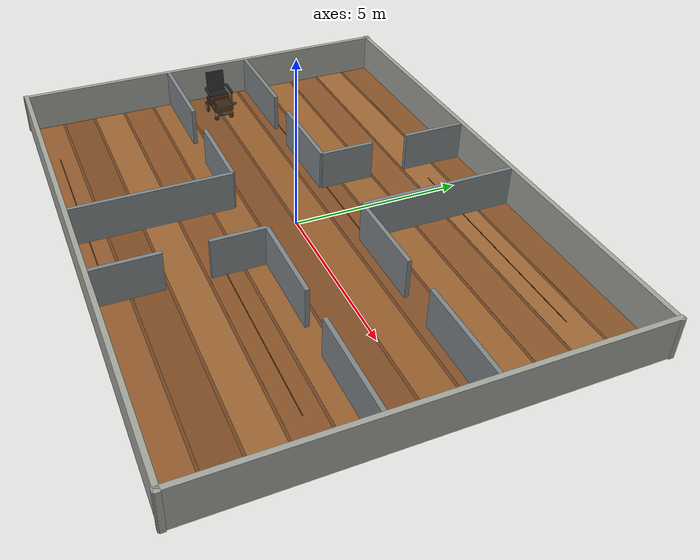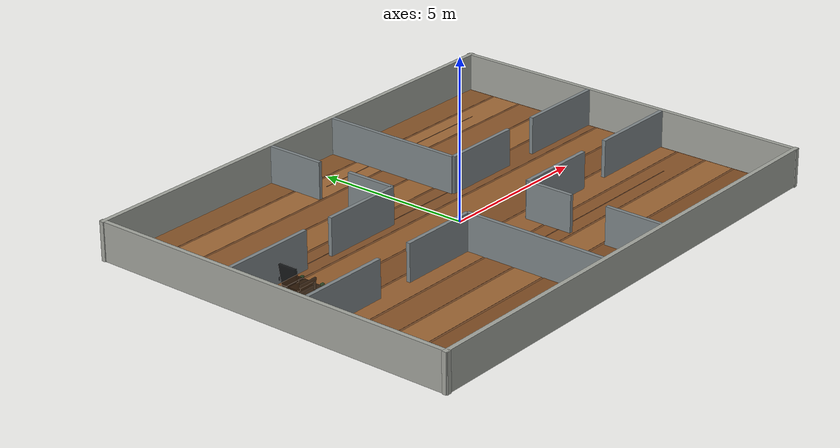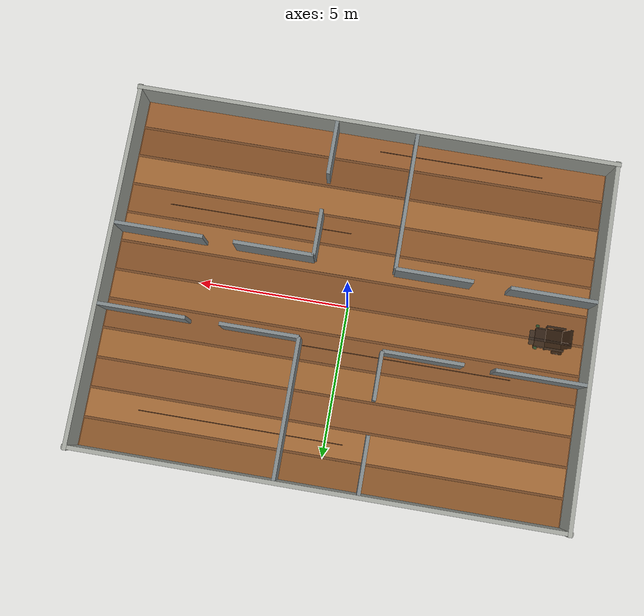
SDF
<?xml version="1.0"?>
<sdf version="1.10">
  <world name="m6_room">
    <physics name="1ms" type="ignored">
      <max_step_size>0.001</max_step_size>
      <real_time_factor>1.0</real_time_factor>
    </physics>

    <plugin filename="gz-sim-physics-system" name="gz::sim::systems::Physics"/>
    <plugin filename="gz-sim-user-commands-system" name="gz::sim::systems::UserCommands"/>
    <plugin filename="gz-sim-scene-broadcaster-system" name="gz::sim::systems::SceneBroadcaster"/>
    <plugin filename="gz-sim-sensors-system" name="gz::sim::systems::Sensors">
      <render_engine>ogre2</render_engine>
    </plugin>

    <light name="sun" type="directional">
      <pose>0 0 8 0 0 0</pose>
      <diffuse>0.90 0.86 0.78 1</diffuse>
      <specular>0.20 0.18 0.15 1</specular>
      <direction>-0.45 0.20 -0.88</direction>
    </light>

    <model name="floor">
      <static>true</static>
      <link name="link">
        <collision name="collision">
          <geometry><box><size>16 12 0.05</size></box></geometry>
        </collision>
        <visual name="visual">
          <geometry><box><size>16 12 0.05</size></box></geometry>
          <material>
            <ambient>0.45 0.28 0.15 1</ambient>
            <diffuse>0.45 0.28 0.15 1</diffuse>
            <specular>0.10 0.08 0.05 1</specular>
          </material>
        </visual>
      </link>
    </model>

    <model name="wood_floor_plank_0"><static>true</static><pose>0 -5.5 0.031 0 0 0</pose><link name="link"><visual name="visual"><geometry><box><size>15.8 0.92 0.004</size></box></geometry><material><ambient>0.58 0.36 0.18 1</ambient><diffuse>0.58 0.36 0.18 1</diffuse></material></visual></link></model>
    <model name="wood_floor_plank_1"><static>true</static><pose>0 -4.5 0.031 0 0 0</pose><link name="link"><visual name="visual"><geometry><box><size>15.8 0.92 0.004</size></box></geometry><material><ambient>0.50 0.30 0.14 1</ambient><diffuse>0.50 0.30 0.14 1</diffuse></material></visual></link></model>
    <model name="wood_floor_plank_2"><static>true</static><pose>0 -3.5 0.031 0 0 0</pose><link name="link"><visual name="visual"><geometry><box><size>15.8 0.92 0.004</size></box></geometry><material><ambient>0.62 0.40 0.20 1</ambient><diffuse>0.62 0.40 0.20 1</diffuse></material></visual></link></model>
    <model name="wood_floor_plank_3"><static>true</static><pose>0 -2.5 0.031 0 0 0</pose><link name="link"><visual name="visual"><geometry><box><size>15.8 0.92 0.004</size></box></geometry><material><ambient>0.54 0.33 0.16 1</ambient><diffuse>0.54 0.33 0.16 1</diffuse></material></visual></link></model>
    <model name="wood_floor_plank_4"><static>true</static><pose>0 -1.5 0.031 0 0 0</pose><link name="link"><visual name="visual"><geometry><box><size>15.8 0.92 0.004</size></box></geometry><material><ambient>0.60 0.38 0.19 1</ambient><diffuse>0.60 0.38 0.19 1</diffuse></material></visual></link></model>
    <model name="wood_floor_plank_5"><static>true</static><pose>0 -0.5 0.031 0 0 0</pose><link name="link"><visual name="visual"><geometry><box><size>15.8 0.92 0.004</size></box></geometry><material><ambient>0.51 0.31 0.15 1</ambient><diffuse>0.51 0.31 0.15 1</diffuse></material></visual></link></model>
    <model name="wood_floor_plank_6"><static>true</static><pose>0 0.5 0.031 0 0 0</pose><link name="link"><visual name="visual"><geometry><box><size>15.8 0.92 0.004</size></box></geometry><material><ambient>0.59 0.37 0.18 1</ambient><diffuse>0.59 0.37 0.18 1</diffuse></material></visual></link></model>
    <model name="wood_floor_plank_7"><static>true</static><pose>0 1.5 0.031 0 0 0</pose><link name="link"><visual name="visual"><geometry><box><size>15.8 0.92 0.004</size></box></geometry><material><ambient>0.52 0.32 0.16 1</ambient><diffuse>0.52 0.32 0.16 1</diffuse></material></visual></link></model>
    <model name="wood_floor_plank_8"><static>true</static><pose>0 2.5 0.031 0 0 0</pose><link name="link"><visual name="visual"><geometry><box><size>15.8 0.92 0.004</size></box></geometry><material><ambient>0.61 0.39 0.19 1</ambient><diffuse>0.61 0.39 0.19 1</diffuse></material></visual></link></model>
    <model name="wood_floor_plank_9"><static>true</static><pose>0 3.5 0.031 0 0 0</pose><link name="link"><visual name="visual"><geometry><box><size>15.8 0.92 0.004</size></box></geometry><material><ambient>0.55 0.34 0.17 1</ambient><diffuse>0.55 0.34 0.17 1</diffuse></material></visual></link></model>
    <model name="wood_floor_plank_10"><static>true</static><pose>0 4.5 0.031 0 0 0</pose><link name="link"><visual name="visual"><geometry><box><size>15.8 0.92 0.004</size></box></geometry><material><ambient>0.63 0.41 0.21 1</ambient><diffuse>0.63 0.41 0.21 1</diffuse></material></visual></link></model>
    <model name="wood_floor_plank_11"><static>true</static><pose>0 5.5 0.031 0 0 0</pose><link name="link"><visual name="visual"><geometry><box><size>15.8 0.92 0.004</size></box></geometry><material><ambient>0.53 0.33 0.16 1</ambient><diffuse>0.53 0.33 0.16 1</diffuse></material></visual></link></model>
    <model name="wood_floor_grain_0"><static>true</static><pose>-3.0 -5.5 0.034 0 0 0</pose><link name="link"><visual name="visual"><geometry><box><size>5.6 0.025 0.005</size></box></geometry><material><ambient>0.28 0.16 0.08 1</ambient><diffuse>0.28 0.16 0.08 1</diffuse></material></visual></link></model>
    <model name="wood_floor_grain_1"><static>true</static><pose>3.4 -2.5 0.034 0 0 0</pose><link name="link"><visual name="visual"><geometry><box><size>6.2 0.025 0.005</size></box></geometry><material><ambient>0.30 0.17 0.08 1</ambient><diffuse>0.30 0.17 0.08 1</diffuse></material></visual></link></model>
    <model name="wood_floor_grain_2"><static>true</static><pose>-2.2 1.5 0.034 0 0 0</pose><link name="link"><visual name="visual"><geometry><box><size>7.0 0.025 0.005</size></box></geometry><material><ambient>0.29 0.17 0.08 1</ambient><diffuse>0.29 0.17 0.08 1</diffuse></material></visual></link></model>
    <model name="wood_floor_grain_3"><static>true</static><pose>2.8 4.5 0.034 0 0 0</pose><link name="link"><visual name="visual"><geometry><box><size>6.8 0.025 0.005</size></box></geometry><material><ambient>0.27 0.15 0.07 1</ambient><diffuse>0.27 0.15 0.07 1</diffuse></material></visual></link></model>

    <model name="outer_north_wall"><static>true</static><pose>0 6 0.60 0 0 0</pose><link name="link"><collision name="collision"><geometry><box><size>16.2 0.14 1.2</size></box></geometry></collision><visual name="visual"><geometry><box><size>16.2 0.14 1.2</size></box></geometry><material><ambient>0.64 0.65 0.62 1</ambient><diffuse>0.64 0.65 0.62 1</diffuse></material></visual></link></model>
    <model name="outer_south_wall"><static>true</static><pose>0 -6 0.60 0 0 0</pose><link name="link"><collision name="collision"><geometry><box><size>16.2 0.14 1.2</size></box></geometry></collision><visual name="visual"><geometry><box><size>16.2 0.14 1.2</size></box></geometry><material><ambient>0.64 0.65 0.62 1</ambient><diffuse>0.64 0.65 0.62 1</diffuse></material></visual></link></model>
    <model name="outer_west_wall"><static>true</static><pose>-8 0 0.60 0 0 0</pose><link name="link"><collision name="collision"><geometry><box><size>0.14 12.2 1.2</size></box></geometry></collision><visual name="visual"><geometry><box><size>0.14 12.2 1.2</size></box></geometry><material><ambient>0.64 0.65 0.62 1</ambient><diffuse>0.64 0.65 0.62 1</diffuse></material></visual></link></model>
    <model name="outer_east_wall"><static>true</static><pose>8 0 0.60 0 0 0</pose><link name="link"><collision name="collision"><geometry><box><size>0.14 12.2 1.2</size></box></geometry></collision><visual name="visual"><geometry><box><size>0.14 12.2 1.2</size></box></geometry><material><ambient>0.64 0.65 0.62 1</ambient><diffuse>0.64 0.65 0.62 1</diffuse></material></visual></link></model>

    <!-- Cross corridor: inner wall faces at x/y = +/-1.29 m.
         Six door openings: 1.0, 1.1 and 1.2 m, two of each.
         NW and SE have two entrances; all four rooms have turning space. -->
    <model name="door_nw_horizontal_a">
      <static>true</static><pose>-6.465 1.35 0.60 0 0 0</pose>
      <link name="link">
        <collision name="collision"><geometry><box><size>2.93 0.12 1.2</size></box></geometry></collision>
        <visual name="visual">
          <geometry><box><size>2.93 0.12 1.2</size></box></geometry>
          <material><ambient>0.50 0.53 0.54 1</ambient><diffuse>0.50 0.53 0.54 1</diffuse></material>
        </visual>
      </link>
    </model>

    <model name="door_nw_horizontal_b">
      <static>true</static><pose>-2.675 1.35 0.60 0 0 0</pose>
      <link name="link">
        <collision name="collision"><geometry><box><size>2.65 0.12 1.2</size></box></geometry></collision>
        <visual name="visual">
          <geometry><box><size>2.65 0.12 1.2</size></box></geometry>
          <material><ambient>0.50 0.53 0.54 1</ambient><diffuse>0.50 0.53 0.54 1</diffuse></material>
        </visual>
      </link>
    </model>

    <model name="door_ne_horizontal_a">
      <static>true</static><pose>2.65 1.35 0.60 0 0 0</pose>
      <link name="link">
        <collision name="collision"><geometry><box><size>2.6 0.12 1.2</size></box></geometry></collision>
        <visual name="visual">
          <geometry><box><size>2.6 0.12 1.2</size></box></geometry>
          <material><ambient>0.50 0.53 0.54 1</ambient><diffuse>0.50 0.53 0.54 1</diffuse></material>
        </visual>
      </link>
    </model>

    <model name="door_ne_horizontal_b">
      <static>true</static><pose>6.49 1.35 0.60 0 0 0</pose>
      <link name="link">
        <collision name="collision"><geometry><box><size>2.88 0.12 1.2</size></box></geometry></collision>
        <visual name="visual">
          <geometry><box><size>2.88 0.12 1.2</size></box></geometry>
          <material><ambient>0.50 0.53 0.54 1</ambient><diffuse>0.50 0.53 0.54 1</diffuse></material>
        </visual>
      </link>
    </model>

    <model name="door_sw_horizontal_a">
      <static>true</static><pose>-6.515 -1.35 0.60 0 0 0</pose>
      <link name="link">
        <collision name="collision"><geometry><box><size>2.83 0.12 1.2</size></box></geometry></collision>
        <visual name="visual">
          <geometry><box><size>2.83 0.12 1.2</size></box></geometry>
          <material><ambient>0.50 0.53 0.54 1</ambient><diffuse>0.50 0.53 0.54 1</diffuse></material>
        </visual>
      </link>
    </model>

    <model name="door_sw_horizontal_b">
      <static>true</static><pose>-2.625 -1.35 0.60 0 0 0</pose>
      <link name="link">
        <collision name="collision"><geometry><box><size>2.55 0.12 1.2</size></box></geometry></collision>
        <visual name="visual">
          <geometry><box><size>2.55 0.12 1.2</size></box></geometry>
          <material><ambient>0.50 0.53 0.54 1</ambient><diffuse>0.50 0.53 0.54 1</diffuse></material>
        </visual>
      </link>
    </model>

    <model name="door_se_horizontal_a">
      <static>true</static><pose>2.675 -1.35 0.60 0 0 0</pose>
      <link name="link">
        <collision name="collision"><geometry><box><size>2.65 0.12 1.2</size></box></geometry></collision>
        <visual name="visual">
          <geometry><box><size>2.65 0.12 1.2</size></box></geometry>
          <material><ambient>0.50 0.53 0.54 1</ambient><diffuse>0.50 0.53 0.54 1</diffuse></material>
        </visual>
      </link>
    </model>

    <model name="door_se_horizontal_b">
      <static>true</static><pose>6.465 -1.35 0.60 0 0 0</pose>
      <link name="link">
        <collision name="collision"><geometry><box><size>2.93 0.12 1.2</size></box></geometry></collision>
        <visual name="visual">
          <geometry><box><size>2.93 0.12 1.2</size></box></geometry>
          <material><ambient>0.50 0.53 0.54 1</ambient><diffuse>0.50 0.53 0.54 1</diffuse></material>
        </visual>
      </link>
    </model>

    <model name="door_nw_vertical_a">
      <static>true</static><pose>-1.35 2.15 0.60 0 0 0</pose>
      <link name="link">
        <collision name="collision"><geometry><box><size>0.12 1.6 1.2</size></box></geometry></collision>
        <visual name="visual">
          <geometry><box><size>0.12 1.6 1.2</size></box></geometry>
          <material><ambient>0.50 0.53 0.54 1</ambient><diffuse>0.50 0.53 0.54 1</diffuse></material>
        </visual>
      </link>
    </model>

    <model name="door_nw_vertical_b">
      <static>true</static><pose>-1.35 4.99 0.60 0 0 0</pose>
      <link name="link">
        <collision name="collision"><geometry><box><size>0.12 1.88 1.2</size></box></geometry></collision>
        <visual name="visual">
          <geometry><box><size>0.12 1.88 1.2</size></box></geometry>
          <material><ambient>0.50 0.53 0.54 1</ambient><diffuse>0.50 0.53 0.54 1</diffuse></material>
        </visual>
      </link>
    </model>

    <model name="door_se_vertical_a">
      <static>true</static><pose>1.35 -5.015 0.60 0 0 0</pose>
      <link name="link">
        <collision name="collision"><geometry><box><size>0.12 1.83 1.2</size></box></geometry></collision>
        <visual name="visual">
          <geometry><box><size>0.12 1.83 1.2</size></box></geometry>
          <material><ambient>0.50 0.53 0.54 1</ambient><diffuse>0.50 0.53 0.54 1</diffuse></material>
        </visual>
      </link>
    </model>

    <model name="door_se_vertical_b">
      <static>true</static><pose>1.35 -2.125 0.60 0 0 0</pose>
      <link name="link">
        <collision name="collision"><geometry><box><size>0.12 1.55 1.2</size></box></geometry></collision>
        <visual name="visual">
          <geometry><box><size>0.12 1.55 1.2</size></box></geometry>
          <material><ambient>0.50 0.53 0.54 1</ambient><diffuse>0.50 0.53 0.54 1</diffuse></material>
        </visual>
      </link>
    </model>

    <model name="vertical_corridor_west_south">
      <static>true</static><pose>-1.35 -3.64 0.60 0 0 0</pose>
      <link name="link">
        <collision name="collision"><geometry><box><size>0.12 4.58 1.2</size></box></geometry></collision>
        <visual name="visual">
          <geometry><box><size>0.12 4.58 1.2</size></box></geometry>
          <material><ambient>0.50 0.53 0.54 1</ambient><diffuse>0.50 0.53 0.54 1</diffuse></material>
        </visual>
      </link>
    </model>

    <model name="vertical_corridor_east_north">
      <static>true</static><pose>1.35 3.64 0.60 0 0 0</pose>
      <link name="link">
        <collision name="collision"><geometry><box><size>0.12 4.58 1.2</size></box></geometry></collision>
        <visual name="visual">
          <geometry><box><size>0.12 4.58 1.2</size></box></geometry>
          <material><ambient>0.50 0.53 0.54 1</ambient><diffuse>0.50 0.53 0.54 1</diffuse></material>
        </visual>
      </link>
    </model>

    <include>
      <uri>model://smart_wheelchair</uri>
      <pose>-6.7 0 0 0 0 0</pose>
    </include>
  </world>
</sdf>

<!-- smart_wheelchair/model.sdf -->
<sdf version="1.6">
  <model name="smart_wheelchair">
    <pose>0 0 0 0 0 0</pose>

    <link name="base_link">
      <inertial>
        <mass>65.0</mass>
        <inertia>
          <ixx>3.0</ixx><ixy>0</ixy><ixz>0</ixz>
          <iyy>4.0</iyy><iyz>0</iyz>
          <izz>3.0</izz>
        </inertia>
      </inertial>

      <collision name="base_collision">
        <pose>0 0 0.42 0 0 0</pose>
        <geometry><box><size>0.95 0.62 0.18</size></box></geometry>
      </collision>
      <visual name="base_visual">
        <transparency>0.35</transparency>
        <pose>0 0 0.42 0 0 0</pose>
        <geometry><box><size>0.95 0.62 0.18</size></box></geometry>
        <material><ambient>0.06 0.07 0.08 1</ambient><diffuse>0.06 0.07 0.08 1</diffuse></material>
      </visual>

      <visual name="seat_visual">
        <transparency>0.35</transparency>
        <pose>-0.12 0 0.68 0 0 0</pose>
        <geometry><box><size>0.60 0.58 0.09</size></box></geometry>
        <material><ambient>0.015 0.017 0.02 1</ambient><diffuse>0.015 0.017 0.02 1</diffuse></material>
      </visual>

      <visual name="backrest_visual">
        <transparency>0.35</transparency>
        <pose>-0.43 0 1.00 0 -0.18 0</pose>
        <geometry><box><size>0.09 0.58 0.70</size></box></geometry>
        <material><ambient>0.015 0.017 0.02 1</ambient><diffuse>0.015 0.017 0.02 1</diffuse></material>
      </visual>

      <visual name="left_armrest_visual">
        <transparency>0.35</transparency>
        <pose>-0.10 0.36 0.83 0 0 0</pose>
        <geometry><box><size>0.62 0.06 0.08</size></box></geometry>
        <material><ambient>0.08 0.09 0.10 1</ambient><diffuse>0.08 0.09 0.10 1</diffuse></material>
      </visual>

      <visual name="right_armrest_visual">
        <transparency>0.35</transparency>
        <pose>-0.10 -0.36 0.83 0 0 0</pose>
        <geometry><box><size>0.62 0.06 0.08</size></box></geometry>
        <material><ambient>0.08 0.09 0.10 1</ambient><diffuse>0.08 0.09 0.10 1</diffuse></material>
      </visual>

      <visual name="left_arm_support_front_visual">
        <transparency>0.35</transparency>
        <pose>0.16 0.36 0.67 0 0 0</pose>
        <geometry><box><size>0.045 0.045 0.28</size></box></geometry>
        <material><ambient>0.16 0.18 0.19 1</ambient><diffuse>0.16 0.18 0.19 1</diffuse></material>
      </visual>

      <visual name="right_arm_support_front_visual">
        <transparency>0.35</transparency>
        <pose>0.16 -0.36 0.67 0 0 0</pose>
        <geometry><box><size>0.045 0.045 0.28</size></box></geometry>
        <material><ambient>0.16 0.18 0.19 1</ambient><diffuse>0.16 0.18 0.19 1</diffuse></material>
      </visual>

      <visual name="footplate_visual">
        <transparency>0.35</transparency>
        <pose>0.48 0 0.30 0 0 0</pose>
        <geometry><box><size>0.32 0.48 0.045</size></box></geometry>
        <material><ambient>0.12 0.13 0.14 1</ambient><diffuse>0.12 0.13 0.14 1</diffuse></material>
      </visual>

      <visual name="left_frame_rail_visual">
        <transparency>0.35</transparency>
        <pose>0.02 0.31 0.52 0 0 0</pose>
        <geometry><box><size>0.86 0.035 0.06</size></box></geometry>
        <material><ambient>0.13 0.15 0.16 1</ambient><diffuse>0.13 0.15 0.16 1</diffuse></material>
      </visual>

      <visual name="right_frame_rail_visual">
        <transparency>0.35</transparency>
        <pose>0.02 -0.31 0.52 0 0 0</pose>
        <geometry><box><size>0.86 0.035 0.06</size></box></geometry>
        <material><ambient>0.13 0.15 0.16 1</ambient><diffuse>0.13 0.15 0.16 1</diffuse></material>
      </visual>

      <visual name="battery_visual">
        <transparency>0.35</transparency>
        <pose>-0.15 0 0.27 0 0 0</pose>
        <geometry><box><size>0.42 0.44 0.12</size></box></geometry>
        <material><ambient>0.08 0.09 0.10 1</ambient><diffuse>0.08 0.09 0.10 1</diffuse></material>
      </visual>

      <visual name="left_lidar_body_visual">
        <transparency>0.35</transparency>
        <plugin name="faint_left_lidar" filename="libSmartWheelChairFaintLidarVisual.so">
          <sensor>left_lidar</sensor>
        </plugin>
        <pose>0.46 0.36 0.56 0 0 0</pose>
        <geometry><box><size>0.10 0.08 0.055</size></box></geometry>
        <material><ambient>0.02 0.30 0.18 1</ambient><diffuse>0.02 0.30 0.18 1</diffuse></material>
      </visual>

      <visual name="right_lidar_body_visual">
        <transparency>0.35</transparency>
        <plugin name="faint_right_lidar" filename="libSmartWheelChairFaintLidarVisual.so">
          <sensor>right_lidar</sensor>
        </plugin>
        <pose>0.46 -0.36 0.56 0 0 0</pose>
        <geometry><box><size>0.10 0.08 0.055</size></box></geometry>
        <material><ambient>0.02 0.30 0.18 1</ambient><diffuse>0.02 0.30 0.18 1</diffuse></material>
      </visual>

      <sensor name="left_lidar" type="ray">
        <pose>0.46 0.36 0.56 0 0 0</pose>
        <update_rate>10</update_rate>
        <ray>
          <scan>
            <horizontal>
              <samples>721</samples>
              <resolution>1</resolution>
              <min_angle>-3.141592653589793</min_angle>
              <max_angle>3.141592653589793</max_angle>
            </horizontal>
          </scan>
          <range>
            <min>0.08</min>
            <max>5.0</max>
            <resolution>0.01</resolution>
          </range>
        </ray>
        <plugin name="left_lidar_ros" filename="libgazebo_ros_laser.so">
          <robotNamespace>/</robotNamespace>
          <topicName>/scan_left</topicName>
          <frameName>left_lidar</frameName>
        </plugin>
        <always_on>true</always_on>
        <visualize>true</visualize>
      </sensor>

      <sensor name="right_lidar" type="ray">
        <pose>0.46 -0.36 0.56 0 0 0</pose>
        <update_rate>10</update_rate>
        <ray>
          <scan>
            <horizontal>
              <samples>721</samples>
              <resolution>1</resolution>
              <min_angle>-3.141592653589793</min_angle>
              <max_angle>3.141592653589793</max_angle>
            </horizontal>
          </scan>
          <range>
            <min>0.08</min>
            <max>5.0</max>
            <resolution>0.01</resolution>
          </range>
        </ray>
        <plugin name="right_lidar_ros" filename="libgazebo_ros_laser.so">
          <robotNamespace>/</robotNamespace>
          <topicName>/scan_right</topicName>
          <frameName>right_lidar</frameName>
        </plugin>
        <always_on>true</always_on>
        <visualize>true</visualize>
      </sensor>

      <sensor name="rear_camera" type="camera">
        <pose>-0.58 0 0.72 0 0.60 3.1416</pose>
        <update_rate>15</update_rate>
        <camera>
          <horizontal_fov>2.094</horizontal_fov>
          <image>
            <width>640</width>
            <height>360</height>
            <format>R8G8B8</format>
          </image>
          <clip>
            <near>0.05</near>
            <far>10.0</far>
          </clip>
        </camera>
        <plugin name="rear_camera_ros" filename="libgazebo_ros_camera.so">
          <robotNamespace>/</robotNamespace>
          <cameraName>camera/rear</cameraName>
          <imageTopicName>image</imageTopicName>
          <cameraInfoTopicName>camera_info</cameraInfoTopicName>
          <frameName>rear_camera</frameName>
        </plugin>
        <always_on>true</always_on>
      </sensor>
    </link>

    <link name="left_rear_wheel">
      <pose>-0.33 0.36 0.18 0 0 0</pose>
      <inertial><mass>2.0</mass><inertia><ixx>0.02</ixx><iyy>0.02</iyy><izz>0.02</izz></inertia></inertial>
      <collision name="collision"><pose>0 0 0 1.5708 0 0</pose><geometry><cylinder><radius>0.18</radius><length>0.07</length></cylinder></geometry></collision>
      <visual name="visual">
        <transparency>0.35</transparency><pose>0 0 0 1.5708 0 0</pose><geometry><cylinder><radius>0.18</radius><length>0.07</length></cylinder></geometry><material><ambient>0.03 0.03 0.03 1</ambient><diffuse>0.03 0.03 0.03 1</diffuse></material></visual>
      <visual name="left_rear_hub_visual">
        <transparency>0.35</transparency><pose>0 0 0 1.5708 0 0</pose><geometry><cylinder><radius>0.09</radius><length>0.08</length></cylinder></geometry><material><ambient>0.55 0.58 0.60 1</ambient><diffuse>0.55 0.58 0.60 1</diffuse></material></visual>
    </link>

    <link name="right_rear_wheel">
      <pose>-0.33 -0.36 0.18 0 0 0</pose>
      <inertial><mass>2.0</mass><inertia><ixx>0.02</ixx><iyy>0.02</iyy><izz>0.02</izz></inertia></inertial>
      <collision name="collision"><pose>0 0 0 1.5708 0 0</pose><geometry><cylinder><radius>0.18</radius><length>0.07</length></cylinder></geometry></collision>
      <visual name="visual">
        <transparency>0.35</transparency><pose>0 0 0 1.5708 0 0</pose><geometry><cylinder><radius>0.18</radius><length>0.07</length></cylinder></geometry><material><ambient>0.03 0.03 0.03 1</ambient><diffuse>0.03 0.03 0.03 1</diffuse></material></visual>
      <visual name="right_rear_hub_visual">
        <transparency>0.35</transparency><pose>0 0 0 1.5708 0 0</pose><geometry><cylinder><radius>0.09</radius><length>0.08</length></cylinder></geometry><material><ambient>0.55 0.58 0.60 1</ambient><diffuse>0.55 0.58 0.60 1</diffuse></material></visual>
    </link>

    <link name="left_front_caster">
      <pose>0.38 0.25 0.08 0 0 0</pose>
      <inertial><mass>0.6</mass><inertia><ixx>0.002</ixx><iyy>0.002</iyy><izz>0.002</izz></inertia></inertial>
      <collision name="collision"><geometry><sphere><radius>0.08</radius></sphere></geometry></collision>
      <visual name="visual">
        <transparency>0.35</transparency><geometry><sphere><radius>0.08</radius></sphere></geometry><material><ambient>0.05 0.05 0.055 1</ambient><diffuse>0.05 0.05 0.055 1</diffuse></material></visual>
      <visual name="left_caster_fork_visual">
        <transparency>0.35</transparency><pose>0 0 0.11 0 0 0</pose><geometry><box><size>0.05 0.12 0.12</size></box></geometry><material><ambient>0.55 0.58 0.60 1</ambient><diffuse>0.55 0.58 0.60 1</diffuse></material></visual>
    </link>

    <link name="right_front_caster">
      <pose>0.38 -0.25 0.08 0 0 0</pose>
      <inertial><mass>0.6</mass><inertia><ixx>0.002</ixx><iyy>0.002</iyy><izz>0.002</izz></inertia></inertial>
      <collision name="collision"><geometry><sphere><radius>0.08</radius></sphere></geometry></collision>
      <visual name="visual">
        <transparency>0.35</transparency><geometry><sphere><radius>0.08</radius></sphere></geometry><material><ambient>0.05 0.05 0.055 1</ambient><diffuse>0.05 0.05 0.055 1</diffuse></material></visual>
      <visual name="right_caster_fork_visual">
        <transparency>0.35</transparency><pose>0 0 0.11 0 0 0</pose><geometry><box><size>0.05 0.12 0.12</size></box></geometry><material><ambient>0.55 0.58 0.60 1</ambient><diffuse>0.55 0.58 0.60 1</diffuse></material></visual>
    </link>

    <link name="rear_axle">
      <pose>-0.33 0 0 0 0 0</pose>
      <inertial>
        <mass>0.001</mass>
        <inertia><ixx>0.000001</ixx><iyy>0.000001</iyy><izz>0.000001</izz></inertia>
      </inertial>
    </link>
    <joint name="rear_axle_joint" type="fixed">
      <parent>base_link</parent>
      <child>rear_axle</child>
    </joint>

    <joint name="left_rear_wheel_joint" type="revolute">
      <parent>base_link</parent>
      <child>left_rear_wheel</child>
      <axis>
        <xyz>0 1 0</xyz>
        <limit><lower>-1e16</lower><upper>1e16</upper></limit>
      </axis>
    </joint>

    <joint name="right_rear_wheel_joint" type="revolute">
      <parent>base_link</parent>
      <child>right_rear_wheel</child>
      <axis>
        <xyz>0 1 0</xyz>
        <limit><lower>-1e16</lower><upper>1e16</upper></limit>
      </axis>
    </joint>

    <joint name="left_front_caster_joint" type="ball">
      <parent>base_link</parent>
      <child>left_front_caster</child>
    </joint>

    <joint name="right_front_caster_joint" type="ball">
      <parent>base_link</parent>
      <child>right_front_caster</child>
    </joint>

    <plugin name="differential_drive_controller" filename="libgazebo_ros_diff_drive.so">
      <robotNamespace>/</robotNamespace>
      <rosDebugLevel>na</rosDebugLevel>
      <publishWheelJointState>false</publishWheelJointState>
      <wheelAcceleration>0</wheelAcceleration>
      <wheelTorque>5</wheelTorque>
      <publishTf>true</publishTf>
      <alwaysOn>true</alwaysOn>
      <updateRate>50</updateRate>
      <leftJoint>left_rear_wheel_joint</leftJoint>
      <rightJoint>right_rear_wheel_joint</rightJoint>
      <wheelSeparation>0.72</wheelSeparation>
      <wheelDiameter>0.36</wheelDiameter>
      <commandTopic>/cmd_vel</commandTopic>
      <odometryTopic>/diff_drive/odom</odometryTopic>
      <odometryFrame>odom</odometryFrame>
      <robotBaseFrame>rear_axle</robotBaseFrame>
      <publishWheelTF>false</publishWheelTF>
      <publishOdomTF>false</publishOdomTF>
      <odometrySource>world</odometrySource>
    </plugin>

    <!-- P3D measures the link itself; diff-drive world odometry measures the model origin. -->
    <plugin name="rear_axle_ground_truth" filename="libgazebo_ros_p3d.so">
      <robotNamespace>/</robotNamespace>
      <bodyName>rear_axle</bodyName>
      <topicName>/rear_axle_ground_truth</topicName>
      <frameName>world</frameName>
      <localTwist>true</localTwist>
      <updateRate>50</updateRate>
      <gaussianNoise>0</gaussianNoise>
    </plugin>

    <plugin filename="libSmartWheelChairTrajectoryPreview.so" name="smart_wheelchair_gazebo::TrajectoryPreviewPlugin">
      <cmd_topic>/cmd_vel_raw</cmd_topic>
      <filtered_cmd_topic>/cmd_vel</filtered_cmd_topic>
      <prediction_seconds>3.0</prediction_seconds>
      <step_seconds>0.3</step_seconds>
      <command_timeout_s>0.5</command_timeout_s>
      <rear_axle_x_m>-0.33</rear_axle_x_m>
      <wheel_separation_m>0.72</wheel_separation_m>
      <z_m>0.18</z_m>
    </plugin>
  </model>
</sdf>
